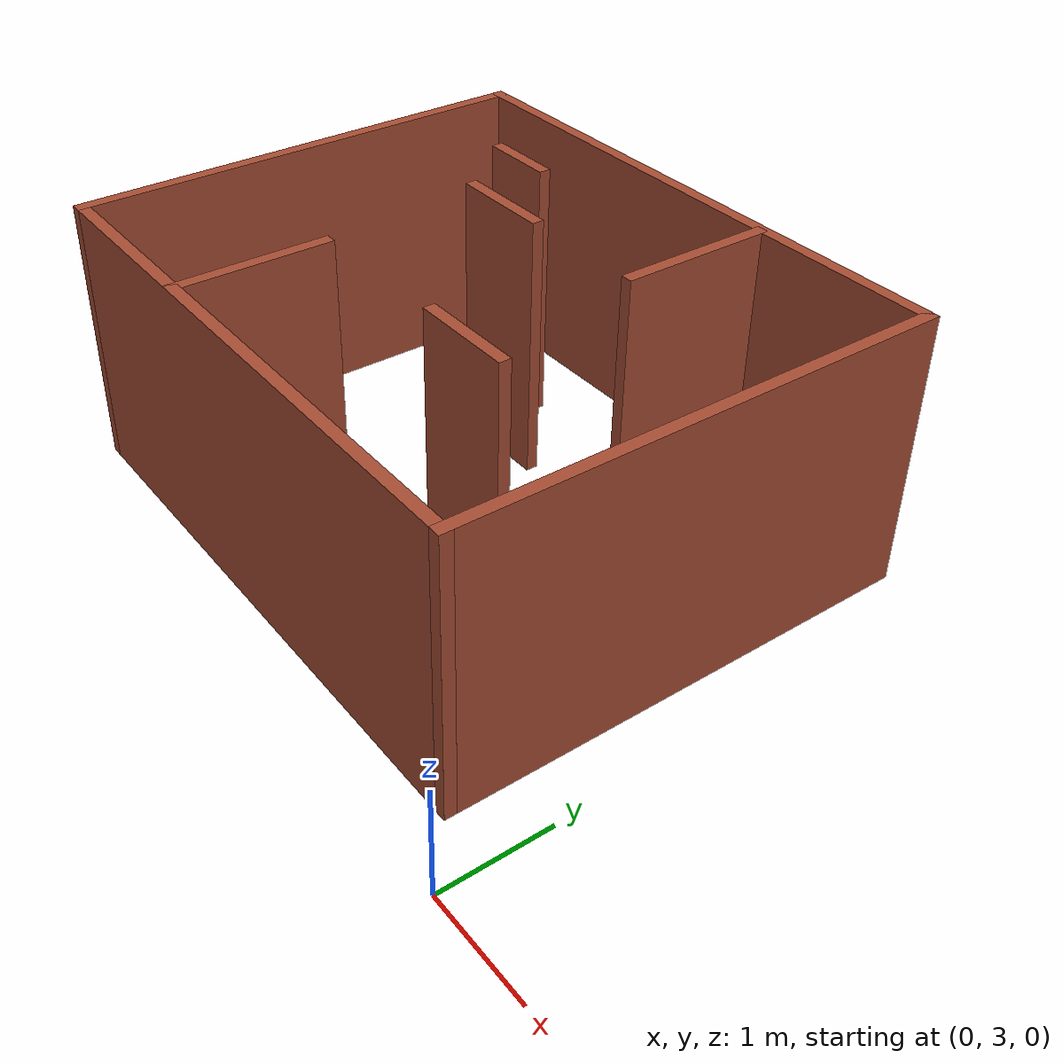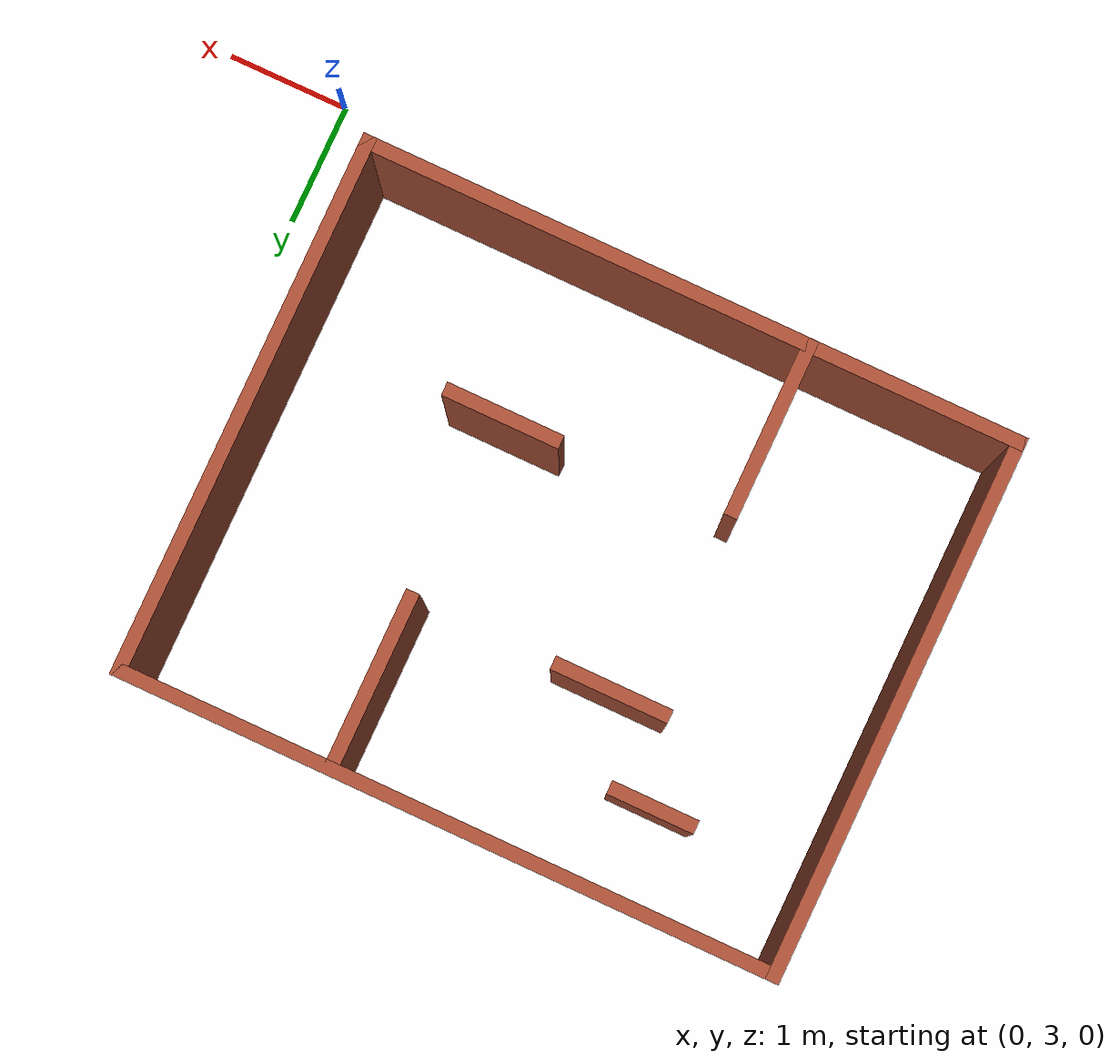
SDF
<?xml version="1.0"?>
<sdf version='1.7'>
    <model name='my_world'>
      <pose>-2.96501 3.93256 0 0 -0 0</pose>
      <link name='Wall_11'>
        <collision name='Wall_11_Collision'>
          <geometry>
            <box>
              <size>1.4596 0.11 2.5</size>
            </box>
          </geometry>
          <pose>0 0 1.25 0 -0 0</pose>
          <max_contacts>10</max_contacts>
          <surface>
            <contact>
              <ode/>
            </contact>
            <bounce/>
            <friction>
              <torsional>
                <ode/>
              </torsional>
              <ode/>
            </friction>
          </surface>
        </collision>
        <visual name='Wall_11_Visual'>
          <pose>0 0 1.25 0 -0 0</pose>
          <geometry>
            <box>
              <size>1.4596 0.11 2.5</size>
            </box>
          </geometry>
          <material>
            <script>
              <uri>file://media/materials/scripts/gazebo.material</uri>
              <name>Gazebo/Bricks</name>
            </script>
            <ambient>1 1 1 1</ambient>
          </material>
          <meta>
            <layer>0</layer>
          </meta>
        </visual>
        <pose>0.709005 3.16044 0 0 -0 -1.5708</pose>
        <self_collide>0</self_collide>
        <enable_wind>0</enable_wind>
        <kinematic>0</kinematic>
      </link>
      <link name='Wall_13'>
        <collision name='Wall_13_Collision'>
          <geometry>
            <box>
              <size>0.959971 0.11 2.5</size>
            </box>
          </geometry>
          <pose>0 0 1.25 0 -0 0</pose>
          <max_contacts>10</max_contacts>
          <surface>
            <contact>
              <ode/>
            </contact>
            <bounce/>
            <friction>
              <torsional>
                <ode/>
              </torsional>
              <ode/>
            </friction>
          </surface>
        </collision>
        <visual name='Wall_13_Visual'>
          <pose>0 0 1.25 0 -0 0</pose>
          <geometry>
            <box>
              <size>0.959971 0.11 2.5</size>
            </box>
          </geometry>
          <material>
            <script>
              <uri>file://media/materials/scripts/gazebo.material</uri>
              <name>Gazebo/Bricks</name>
            </script>
            <ambient>1 1 1 1</ambient>
          </material>
          <meta>
            <layer>0</layer>
          </meta>
        </visual>
        <pose>0.658005 0.961439 0 0 -0 0</pose>
        <self_collide>0</self_collide>
        <enable_wind>0</enable_wind>
        <kinematic>0</kinematic>
      </link>
      <link name='Wall_15'>
        <collision name='Wall_15_Collision'>
          <geometry>
            <box>
              <size>0.709887 0.11 2.5</size>
            </box>
          </geometry>
          <pose>0 0 1.25 0 -0 0</pose>
          <max_contacts>10</max_contacts>
          <surface>
            <contact>
              <ode/>
            </contact>
            <bounce/>
            <friction>
              <torsional>
                <ode/>
              </torsional>
              <ode/>
            </friction>
          </surface>
        </collision>
        <visual name='Wall_15_Visual'>
          <pose>0 0 1.25 0 -0 0</pose>
          <geometry>
            <box>
              <size>0.709887 0.11 2.5</size>
            </box>
          </geometry>
          <material>
            <script>
              <uri>file://media/materials/scripts/gazebo.material</uri>
              <name>Gazebo/Bricks</name>
            </script>
            <ambient>1 1 1 1</ambient>
          </material>
          <meta>
            <layer>0</layer>
          </meta>
        </visual>
        <pose>-1.57599 3.13244 0 0 -0 0</pose>
        <self_collide>0</self_collide>
        <enable_wind>0</enable_wind>
        <kinematic>0</kinematic>
      </link>
      <link name='Wall_17'>
        <collision name='Wall_17_Collision'>
          <geometry>
            <box>
              <size>0.959819 0.11 2.5</size>
            </box>
          </geometry>
          <pose>0 0 1.25 0 -0 0</pose>
          <max_contacts>10</max_contacts>
          <surface>
            <contact>
              <ode/>
            </contact>
            <bounce/>
            <friction>
              <torsional>
                <ode/>
              </torsional>
              <ode/>
            </friction>
          </surface>
        </collision>
        <visual name='Wall_17_Visual'>
          <pose>0 0 1.25 0 -0 0</pose>
          <geometry>
            <box>
              <size>0.959819 0.11 2.5</size>
            </box>
          </geometry>
          <material>
            <script>
              <uri>file://media/materials/scripts/gazebo.material</uri>
              <name>Gazebo/Bricks</name>
            </script>
            <ambient>1 1 1 1</ambient>
          </material>
          <meta>
            <layer>0</layer>
          </meta>
        </visual>
        <pose>-0.933995 2.47144 0 0 -0 0</pose>
        <self_collide>0</self_collide>
        <enable_wind>0</enable_wind>
        <kinematic>0</kinematic>
      </link>
      <link name='Wall_3'>
        <collision name='Wall_3_Collision'>
          <geometry>
            <box>
              <size>5.46002 0.11 2.5</size>
            </box>
          </geometry>
          <pose>0 0 1.25 0 -0 0</pose>
          <max_contacts>10</max_contacts>
          <surface>
            <contact>
              <ode/>
            </contact>
            <bounce/>
            <friction>
              <torsional>
                <ode/>
              </torsional>
              <ode/>
            </friction>
          </surface>
        </collision>
        <visual name='Wall_3_Visual'>
          <pose>0 0 1.25 0 -0 0</pose>
          <geometry>
            <box>
              <size>5.46002 0.11 2.5</size>
            </box>
          </geometry>
          <material>
            <script>
              <uri>file://media/materials/scripts/gazebo.material</uri>
              <name>Gazebo/Bricks</name>
            </script>
            <ambient>1 1 1 1</ambient>
          </material>
          <meta>
            <layer>0</layer>
          </meta>
        </visual>
        <pose>-0.234995 3.87744 0 0 -0 0</pose>
        <self_collide>0</self_collide>
        <enable_wind>0</enable_wind>
        <kinematic>0</kinematic>
      </link>
      <link name='Wall_4'>
        <collision name='Wall_4_Collision'>
          <geometry>
            <box>
              <size>4.46024 0.11 2.5</size>
            </box>
          </geometry>
          <pose>0 0 1.25 0 -0 0</pose>
          <max_contacts>10</max_contacts>
          <surface>
            <contact>
              <ode/>
            </contact>
            <bounce/>
            <friction>
              <torsional>
                <ode/>
              </torsional>
              <ode/>
            </friction>
          </surface>
        </collision>
        <visual name='Wall_4_Visual'>
          <pose>0 0 1.25 0 -0 0</pose>
          <geometry>
            <box>
              <size>4.46024 0.11 2.5</size>
            </box>
          </geometry>
          <material>
            <script>
              <uri>file://media/materials/scripts/gazebo.material</uri>
              <name>Gazebo/Bricks</name>
            </script>
            <ambient>1 1 1 1</ambient>
          </material>
          <meta>
            <layer>0</layer>
          </meta>
        </visual>
        <pose>2.44001 1.70244 0 0 -0 -1.5708</pose>
        <self_collide>0</self_collide>
        <enable_wind>0</enable_wind>
        <kinematic>0</kinematic>
      </link>
      <link name='Wall_5'>
        <collision name='Wall_5_Collision'>
          <geometry>
            <box>
              <size>5.46 0.11 2.5</size>
            </box>
          </geometry>
          <pose>0 0 1.25 0 -0 0</pose>
          <max_contacts>10</max_contacts>
          <surface>
            <contact>
              <ode/>
            </contact>
            <bounce/>
            <friction>
              <torsional>
                <ode/>
              </torsional>
              <ode/>
            </friction>
          </surface>
        </collision>
        <visual name='Wall_5_Visual'>
          <pose>0 0 1.25 0 -0 0</pose>
          <geometry>
            <box>
              <size>5.46 0.11 2.5</size>
            </box>
          </geometry>
          <material>
            <script>
              <uri>file://media/materials/scripts/gazebo.material</uri>
              <name>Gazebo/Bricks</name>
            </script>
            <ambient>1 1 1 1</ambient>
          </material>
          <meta>
            <layer>0</layer>
          </meta>
        </visual>
        <pose>-0.234995 -0.472561 0 0 -0 3.14159</pose>
        <self_collide>0</self_collide>
        <enable_wind>0</enable_wind>
        <kinematic>0</kinematic>
      </link>
      <link name='Wall_6'>
        <collision name='Wall_6_Collision'>
          <geometry>
            <box>
              <size>4.46 0.11 2.5</size>
            </box>
          </geometry>
          <pose>0 0 1.25 0 -0 0</pose>
          <max_contacts>10</max_contacts>
          <surface>
            <contact>
              <ode/>
            </contact>
            <bounce/>
            <friction>
              <torsional>
                <ode/>
              </torsional>
              <ode/>
            </friction>
          </surface>
        </collision>
        <visual name='Wall_6_Visual'>
          <pose>0 0 1.25 0 -0 0</pose>
          <geometry>
            <box>
              <size>4.46 0.11 2.5</size>
            </box>
          </geometry>
          <material>
            <script>
              <uri>file://media/materials/scripts/gazebo.material</uri>
              <name>Gazebo/Bricks</name>
            </script>
            <ambient>1 1 1 1</ambient>
          </material>
          <meta>
            <layer>0</layer>
          </meta>
        </visual>
        <pose>-2.90999 1.70244 0 0 -0 1.5708</pose>
        <self_collide>0</self_collide>
        <enable_wind>0</enable_wind>
        <kinematic>0</kinematic>
      </link>
      <link name='Wall_9'>
        <collision name='Wall_9_Collision'>
          <geometry>
            <box>
              <size>1.46045 0.11 2.5</size>
            </box>
          </geometry>
          <pose>0 0 1.25 0 -0 0</pose>
          <max_contacts>10</max_contacts>
          <surface>
            <contact>
              <ode/>
            </contact>
            <bounce/>
            <friction>
              <torsional>
                <ode/>
              </torsional>
              <ode/>
            </friction>
          </surface>
        </collision>
        <visual name='Wall_9_Visual'>
          <pose>0 0 1.25 0 -0 0</pose>
          <geometry>
            <box>
              <size>1.46045 0.11 2.5</size>
            </box>
          </geometry>
          <material>
            <script>
              <uri>file://media/materials/scripts/gazebo.material</uri>
              <name>Gazebo/Bricks</name>
            </script>
            <ambient>1 1 1 1</ambient>
          </material>
          <meta>
            <layer>0</layer>
          </meta>
        </visual>
        <pose>-1.19399 0.204439 0 0 -0 -1.5708</pose>
        <self_collide>0</self_collide>
        <enable_wind>0</enable_wind>
        <kinematic>0</kinematic>
      </link>
      <static>1</static>
    </model>
</sdf>
